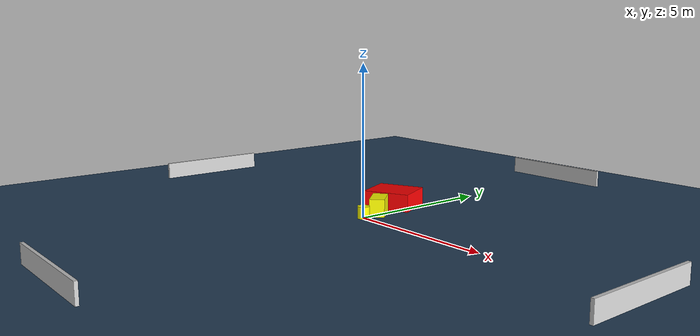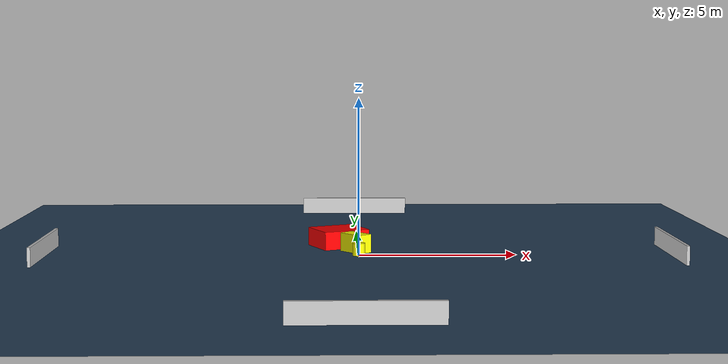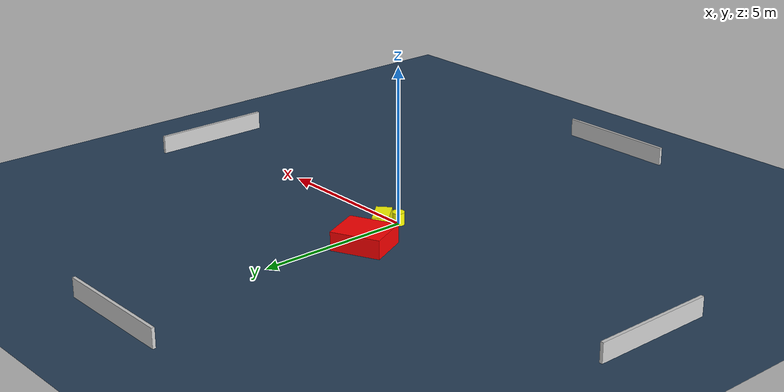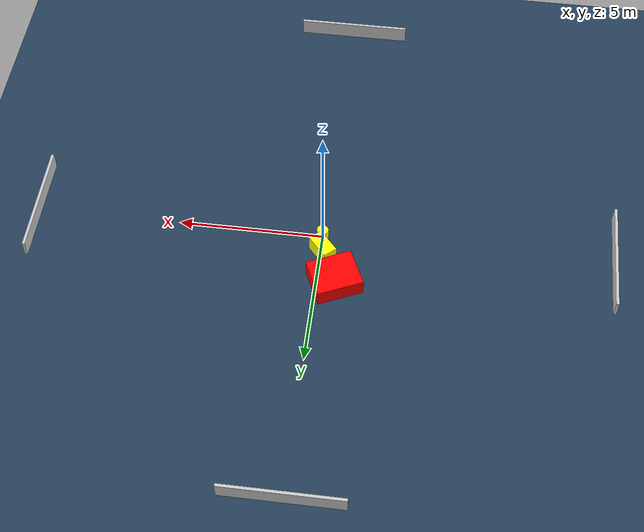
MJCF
<?xml version="1.0" ?>
<mujoco model="generated_environment">
  <option timestep="0.01" integrator="RK4" cone="elliptic"/>
  <default>
    <geom density="1"/>
  </default>
  <asset>
    <texture builtin="gradient" height="3072" name="skybox" rgb1="0.3 0.5 0.7" rgb2="0 0 0" type="skybox" width="512"/>
    <texture builtin="checker" height="300" name="groundplane" rgb1="0.2 0.3 0.4" rgb2="0.1 0.2 0.3" type="2d" width="300"/>
    <material name="groundplane" reflectance="0.2" texrepeat="5 5" texture="groundplane"/>
  </asset>
  <worldbody>
    <light dir="0 0 -1" directional="true" pos="0 0 1.5"/>
    <geom condim="3" friction="0.5 0.005 0.001" material="groundplane" name="floor" pos="0 0 0" size="0 0 0.05" type="plane"/>
    <body name="walls">
      <geom name="wall_1" condim="4" pos="-10.0 0.0 0.3" rgba="0.800000011920929 0.800000011920929 0.800000011920929 1.0" size="0.05 2.0 0.3" type="box"/>
      <geom name="wall_2" condim="4" pos="10.0 0.0 0.3" rgba="0.800000011920929 0.800000011920929 0.800000011920929 1.0" size="0.05 2.0 0.3" type="box"/>
      <geom name="wall_3" condim="4" pos="0.0 -10.0 0.3" rgba="0.800000011920929 0.800000011920929 0.800000011920929 1.0" size="2.0 0.05 0.3" type="box"/>
      <geom name="wall_4" condim="4" pos="0.0 10.0 0.3" rgba="0.800000011920929 0.800000011920929 0.800000011920929 1.0" size="2.0 0.05 0.3" type="box"/>
    </body>
    <body name="robot">
      <joint name="joint_x" type="slide" pos="0 0 0" axis="1 0 0"/>
      <joint name="joint_y" type="slide" pos="0 0 0" axis="0 1 0"/>
      <geom name="robot" type="cylinder" pos="0.0 0.0 0.2" size="0.2 0.2 0.0" mass="5.0" friction="1.0 0.005 0.0001" condim="4" rgba="1.0 1.0 0.0 1.0"/>
    </body>
    <body name="obstacle_1_movable">
      <geom name="obstacle_1_movable" condim="4" pos="-0.08615669014250169 0.7190289309615312 0.3" euler="0 0 311.3099643613226" friction="0.0 0.005 0.001" rgba="1.0 1.0 0.0 1.0" size="0.4625975885418617 0.25092284566656387 0.3" type="box" mass="0.1"/>
      <joint type="free"/>
    </body>
    <body name="obstacle_2_static">
      <geom name="obstacle_2_static" condim="4" pos="-0.6292256121426772 1.8698228104793615 0.3" euler="0 0 114.71244242036741" friction="0.0 0.005 0.001" rgba="1.0 0.0 0.0 1.0" size="0.6815640855865308 0.7969019771594144 0.3" type="box"/>
    </body>
  </worldbody>
  <actuator>
    <motor name="actuator_x" joint="joint_x" gear="1" ctrlrange="-1 1"/>
    <motor name="actuator_y" joint="joint_y" gear="1" ctrlrange="-1 1"/>
  </actuator>
</mujoco>
